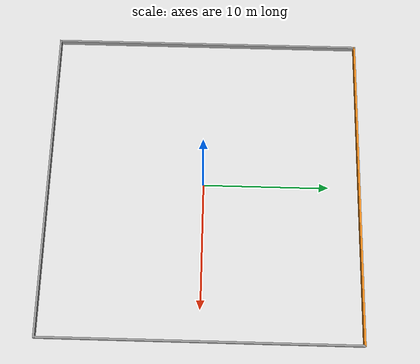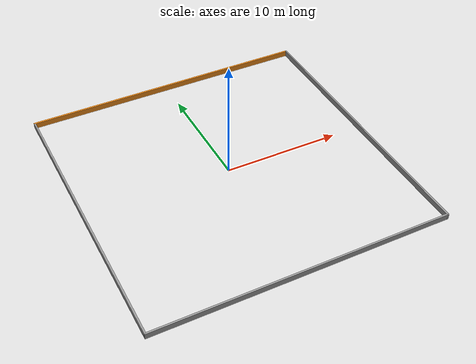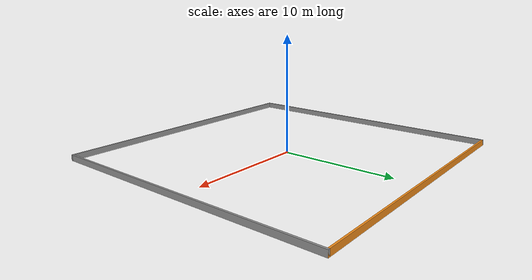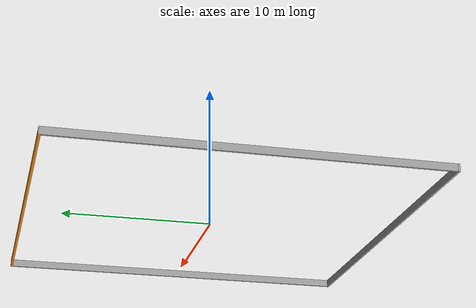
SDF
<?xml version='1.0'?>
<sdf version='1.6'>
  <model name='ArenaWalls'>
    <link name='Wall_20'>
      <pose frame=''>0 -12.425 0 0 -0 0</pose>
      <self_collide>0</self_collide>
      <enable_wind>0</enable_wind>
      <kinematic>0</kinematic>
      <gravity>1</gravity>
      <inertial>
        <mass>1</mass>
        <pose frame=''>0 0 0 0 -0 0</pose>
        <inertia>
          <ixx>1</ixx>
          <ixy>0</ixy>
          <ixz>0</ixz>
          <iyy>1</iyy>
          <iyz>0</iyz>
          <izz>1</izz>
        </inertia>
      </inertial>
      <visual name='Wall_20_Visual'>
        <pose frame=''>0 0 0.25 0 -0 0</pose>
        <geometry>
          <box>
            <size>25 0.15 0.5</size>
          </box>
        </geometry>
        <material>
          <script>
            <uri>file://media/materials/scripts/gazebo.material</uri>
            <name>Gazebo/Grey</name>
          </script>
          <ambient>1 1 1 1</ambient>
          <shader type='vertex'>
            <normal_map>__default__</normal_map>
          </shader>
          <diffuse>0.7 0.7 0.7 1</diffuse>
          <specular>0.01 0.01 0.01 1</specular>
          <emissive>0 0 0 1</emissive>
        </material>
        <meta>
          <layer>0</layer>
        </meta>
        <transparency>0</transparency>
        <cast_shadows>1</cast_shadows>
      </visual>
      <collision name='Wall_20_Collision'>
        <laser_retro>0</laser_retro>
        <max_contacts>10</max_contacts>
        <pose frame=''>0 0 0.75 0 -0 0</pose>
        <geometry>
          <box>
            <size>25 0.15 1.5</size>
          </box>
        </geometry>
        <surface>
          <friction>
            <ode>
              <mu>1</mu>
              <mu2>1</mu2>
              <fdir1>0 0 0</fdir1>
              <slip1>0</slip1>
              <slip2>0</slip2>
            </ode>
            <torsional>
              <coefficient>1</coefficient>
              <patch_radius>0</patch_radius>
              <surface_radius>0</surface_radius>
              <use_patch_radius>1</use_patch_radius>
              <ode>
                <slip>0</slip>
              </ode>
            </torsional>
          </friction>
          <bounce>
            <restitution_coefficient>0</restitution_coefficient>
            <threshold>1e+06</threshold>
          </bounce>
          <contact>
            <collide_without_contact>0</collide_without_contact>
            <collide_without_contact_bitmask>1</collide_without_contact_bitmask>
            <collide_bitmask>1</collide_bitmask>
            <ode>
              <soft_cfm>0</soft_cfm>
              <soft_erp>0.2</soft_erp>
              <kp>1e+13</kp>
              <kd>1</kd>
              <max_vel>0.01</max_vel>
              <min_depth>0</min_depth>
            </ode>
            <bullet>
              <split_impulse>1</split_impulse>
              <split_impulse_penetration_threshold>-0.01</split_impulse_penetration_threshold>
              <soft_cfm>0</soft_cfm>
              <soft_erp>0.2</soft_erp>
              <kp>1e+13</kp>
              <kd>1</kd>
            </bullet>
          </contact>
        </surface>
      </collision>
    </link>
    <link name='Wall_22'>
      <pose frame=''>-12.425 0 0 0 -0 1.5708</pose>
      <self_collide>0</self_collide>
      <enable_wind>0</enable_wind>
      <kinematic>0</kinematic>
      <gravity>1</gravity>
      <inertial>
        <mass>1</mass>
        <pose frame=''>0 0 0 0 -0 0</pose>
        <inertia>
          <ixx>1</ixx>
          <ixy>0</ixy>
          <ixz>0</ixz>
          <iyy>1</iyy>
          <iyz>0</iyz>
          <izz>1</izz>
        </inertia>
      </inertial>
      <visual name='Wall_22_Visual'>
        <pose frame=''>0 0 0.25 0 -0 0</pose>
        <geometry>
          <box>
            <size>25 0.15 0.5</size>
          </box>
        </geometry>
        <material>
          <script>
            <uri>file://media/materials/scripts/gazebo.material</uri>
            <name>Gazebo/Grey</name>
          </script>
          <ambient>1 1 1 1</ambient>
          <shader type='vertex'>
            <normal_map>__default__</normal_map>
          </shader>
          <diffuse>0.7 0.7 0.7 1</diffuse>
          <specular>0.01 0.01 0.01 1</specular>
          <emissive>0 0 0 1</emissive>
        </material>
        <meta>
          <layer>0</layer>
        </meta>
        <transparency>0</transparency>
        <cast_shadows>1</cast_shadows>
      </visual>
      <collision name='Wall_22_Collision'>
        <laser_retro>0</laser_retro>
        <max_contacts>10</max_contacts>
        <pose frame=''>0 0 0.75 0 -0 0</pose>
        <geometry>
          <box>
            <size>25 0.15 1.5</size>
          </box>
        </geometry>
        <surface>
          <friction>
            <ode>
              <mu>1</mu>
              <mu2>1</mu2>
              <fdir1>0 0 0</fdir1>
              <slip1>0</slip1>
              <slip2>0</slip2>
            </ode>
            <torsional>
              <coefficient>1</coefficient>
              <patch_radius>0</patch_radius>
              <surface_radius>0</surface_radius>
              <use_patch_radius>1</use_patch_radius>
              <ode>
                <slip>0</slip>
              </ode>
            </torsional>
          </friction>
          <bounce>
            <restitution_coefficient>0</restitution_coefficient>
            <threshold>1e+06</threshold>
          </bounce>
          <contact>
            <collide_without_contact>0</collide_without_contact>
            <collide_without_contact_bitmask>1</collide_without_contact_bitmask>
            <collide_bitmask>1</collide_bitmask>
            <ode>
              <soft_cfm>0</soft_cfm>
              <soft_erp>0.2</soft_erp>
              <kp>1e+13</kp>
              <kd>1</kd>
              <max_vel>0.01</max_vel>
              <min_depth>0</min_depth>
            </ode>
            <bullet>
              <split_impulse>1</split_impulse>
              <split_impulse_penetration_threshold>-0.01</split_impulse_penetration_threshold>
              <soft_cfm>0</soft_cfm>
              <soft_erp>0.2</soft_erp>
              <kp>1e+13</kp>
              <kd>1</kd>
            </bullet>
          </contact>
        </surface>
      </collision>
    </link>
    <link name='Wall_27'>
      <pose frame=''>0 12.425 0 0 -0 0</pose>
      <self_collide>0</self_collide>
      <enable_wind>0</enable_wind>
      <kinematic>0</kinematic>
      <gravity>1</gravity>
      <inertial>
        <mass>1</mass>
        <pose frame=''>0 0 0 0 -0 0</pose>
        <inertia>
          <ixx>1</ixx>
          <ixy>0</ixy>
          <ixz>0</ixz>
          <iyy>1</iyy>
          <iyz>0</iyz>
          <izz>1</izz>
        </inertia>
      </inertial>
      <visual name='Wall_27_Visual'>
        <pose frame=''>0 0 0.25 0 -0 0</pose>
        <geometry>
          <box>
            <size>25 0.15 0.5</size>
          </box>
        </geometry>
        <material>
          <script>
            <uri>file://media/materials/scripts/gazebo.material</uri>
            <name>Gazebo/Orange</name>
          </script>
          <ambient>1 1 1 1</ambient>
          <shader type='vertex'>
            <normal_map>__default__</normal_map>
          </shader>
          <diffuse>0 0 0 1</diffuse>
          <specular>0 0 0 1</specular>
          <emissive>0 0 0 1</emissive>
        </material>
        <meta>
          <layer>0</layer>
        </meta>
        <transparency>0</transparency>
        <cast_shadows>1</cast_shadows>
      </visual>
      <collision name='Wall_27_Collision'>
        <laser_retro>0</laser_retro>
        <max_contacts>10</max_contacts>
        <pose frame=''>0 0 0.75 0 -0 0</pose>
        <geometry>
          <box>
            <size>25 0.15 1.5</size>
          </box>
        </geometry>
        <surface>
          <friction>
            <ode>
              <mu>1</mu>
              <mu2>1</mu2>
              <fdir1>0 0 0</fdir1>
              <slip1>0</slip1>
              <slip2>0</slip2>
            </ode>
            <torsional>
              <coefficient>1</coefficient>
              <patch_radius>0</patch_radius>
              <surface_radius>0</surface_radius>
              <use_patch_radius>1</use_patch_radius>
              <ode>
                <slip>0</slip>
              </ode>
            </torsional>
          </friction>
          <bounce>
            <restitution_coefficient>0</restitution_coefficient>
            <threshold>1e+06</threshold>
          </bounce>
          <contact>
            <collide_without_contact>0</collide_without_contact>
            <collide_without_contact_bitmask>1</collide_without_contact_bitmask>
            <collide_bitmask>1</collide_bitmask>
            <ode>
              <soft_cfm>0</soft_cfm>
              <soft_erp>0.2</soft_erp>
              <kp>1e+13</kp>
              <kd>1</kd>
              <max_vel>0.01</max_vel>
              <min_depth>0</min_depth>
            </ode>
            <bullet>
              <split_impulse>1</split_impulse>
              <split_impulse_penetration_threshold>-0.01</split_impulse_penetration_threshold>
              <soft_cfm>0</soft_cfm>
              <soft_erp>0.2</soft_erp>
              <kp>1e+13</kp>
              <kd>1</kd>
            </bullet>
          </contact>
        </surface>
      </collision>
    </link>
    <link name='Wall_29'>
      <pose frame=''>12.425 0 0 0 0 -1.5708</pose>
      <self_collide>0</self_collide>
      <enable_wind>0</enable_wind>
      <kinematic>0</kinematic>
      <gravity>1</gravity>
      <inertial>
        <mass>1</mass>
        <pose frame=''>0 0 0 0 -0 0</pose>
        <inertia>
          <ixx>1</ixx>
          <ixy>0</ixy>
          <ixz>0</ixz>
          <iyy>1</iyy>
          <iyz>0</iyz>
          <izz>1</izz>
        </inertia>
      </inertial>
      <visual name='Wall_29_Visual'>
        <pose frame=''>0 0 0.25 0 -0 0</pose>
        <geometry>
          <box>
            <size>25 0.15 0.5</size>
          </box>
        </geometry>
        <material>
          <script>
            <uri>file://media/materials/scripts/gazebo.material</uri>
            <name>Gazebo/Grey</name>
          </script>
          <ambient>1 1 1 1</ambient>
          <shader type='vertex'>
            <normal_map>__default__</normal_map>
          </shader>
          <diffuse>0.7 0.7 0.7 1</diffuse>
          <specular>0.01 0.01 0.01 1</specular>
          <emissive>0 0 0 1</emissive>
        </material>
        <meta>
          <layer>0</layer>
        </meta>
        <transparency>0</transparency>
        <cast_shadows>1</cast_shadows>
      </visual>
      <collision name='Wall_29_Collision'>
        <laser_retro>0</laser_retro>
        <max_contacts>10</max_contacts>
        <pose frame=''>0 0 0.75 0 -0 0</pose>
        <geometry>
          <box>
            <size>25 0.15 1.5</size>
          </box>
        </geometry>
        <surface>
          <friction>
            <ode>
              <mu>1</mu>
              <mu2>1</mu2>
              <fdir1>0 0 0</fdir1>
              <slip1>0</slip1>
              <slip2>0</slip2>
            </ode>
            <torsional>
              <coefficient>1</coefficient>
              <patch_radius>0</patch_radius>
              <surface_radius>0</surface_radius>
              <use_patch_radius>1</use_patch_radius>
              <ode>
                <slip>0</slip>
              </ode>
            </torsional>
          </friction>
          <bounce>
            <restitution_coefficient>0</restitution_coefficient>
            <threshold>1e+06</threshold>
          </bounce>
          <contact>
            <collide_without_contact>0</collide_without_contact>
            <collide_without_contact_bitmask>1</collide_without_contact_bitmask>
            <collide_bitmask>1</collide_bitmask>
            <ode>
              <soft_cfm>0</soft_cfm>
              <soft_erp>0.2</soft_erp>
              <kp>1e+13</kp>
              <kd>1</kd>
              <max_vel>0.01</max_vel>
              <min_depth>0</min_depth>
            </ode>
            <bullet>
              <split_impulse>1</split_impulse>
              <split_impulse_penetration_threshold>-0.01</split_impulse_penetration_threshold>
              <soft_cfm>0</soft_cfm>
              <soft_erp>0.2</soft_erp>
              <kp>1e+13</kp>
              <kd>1</kd>
            </bullet>
          </contact>
        </surface>
      </collision>
    </link>
    <static>1</static>
    <allow_auto_disable>1</allow_auto_disable>
  </model>
</sdf>
